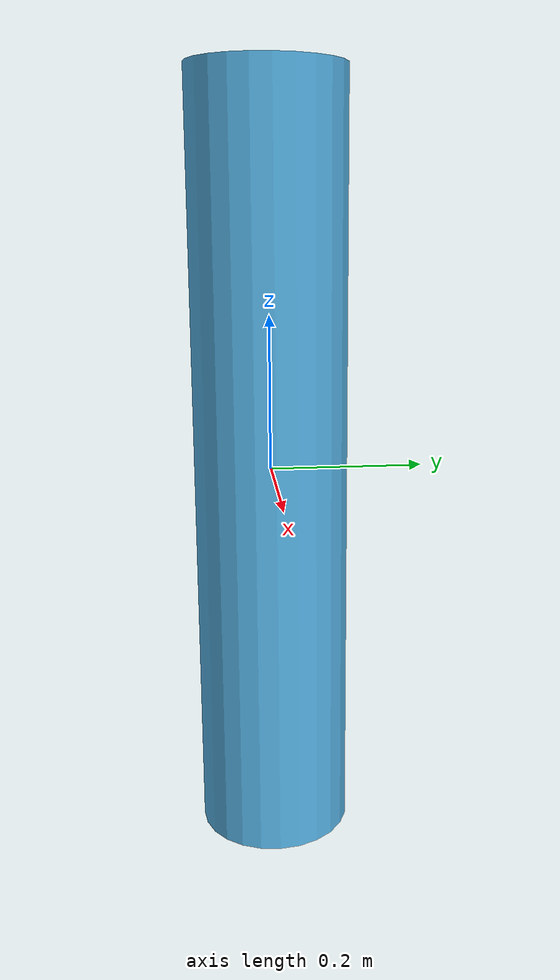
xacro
<?xml version="1.0"?>
<robot xmlns:xacro="http://www.ros.org/wiki/xacro" name="$(arg name)">

    <xacro:arg name="name" default="mav500_drive_system"/>

    <xacro:arg name="prefix" default="" />

    <xacro:arg name="bus_config" default=""/>
    <xacro:arg name="master_config" default=""/>
    <xacro:arg name="master_bin" default=""/>
    <xacro:arg name="can_interface_name" default="vcan0"/>

    <!-- ros2 control include -->
    <xacro:include filename="$(find diff_canopen_system)/urdf/mav1500/mav1500_new.ros2_control.xacro"/>
    <xacro:include filename="$(find diff_canopen_system)/urdf/mav1500/mav1500_plc.ros2_control.xacro"/>

    <xacro:mav1500_ros2_control
      name="$(arg name)"
      prefix="$(arg prefix)"
      mock_hardware="true"
      mock_sensor_commands="true"
      bus_config="$(arg bus_config)"
      master_config="$(arg master_config)"
      can_interface_name="$(arg can_interface_name)"
      master_bin="$(arg master_bin)"
    />

    <xacro:mav1500_plc_ros2_control
      name="$(arg name)"
      prefix="$(arg prefix)"
    />

    <link name="$(arg prefix)base_link"/>
    <link name="$(arg prefix)left_wheel_link">
      <visual>
        <origin xyz="0 0 0" rpy="0 0 0"/>
        <geometry>
          <cylinder radius="0.1" length="1.0"/>
        </geometry>
      </visual>
      <collision>
        <origin xyz="0 0 0" rpy="0 0 0"/>
        <geometry>
          <cylinder radius="0.1" length="1.0"/>
        </geometry>
      </collision>
    </link>

    <link name="$(arg prefix)right_wheel_link">
      <visual>
        <origin xyz="0 0 0" rpy="0 0 0"/>
        <geometry>
          <cylinder radius="0.1" length="1.0"/>
        </geometry>
      </visual>
      <collision>
        <origin xyz="0 0 0" rpy="0 0 0"/>
        <geometry>
          <cylinder radius="0.1" length="1.0"/>
        </geometry>
      </collision>
    </link>

    <joint name="$(arg prefix)left_wheel" type="revolute">
        <parent link="$(arg prefix)base_link" />
        <child link="$(arg prefix)left_wheel_link" />
        <origin xyz="0 0 0" rpy="0 0 0" />
        <axis xyz="0 0 1" />
        <limit lower="${-2*pi}" upper="${2*pi}" effort="10.0" velocity="0.5"/>
    </joint>

    <joint name="$(arg prefix)right_wheel" type="revolute">
        <parent link="$(arg prefix)base_link" />
        <child link="$(arg prefix)right_wheel_link" />
        <origin xyz="0 0 0" rpy="0 0 0" />
        <axis xyz="0 0 1" />
        <limit lower="${-2*pi}" upper="${2*pi}" effort="10.0" velocity="0.5"/>
    </joint>

</robot>
